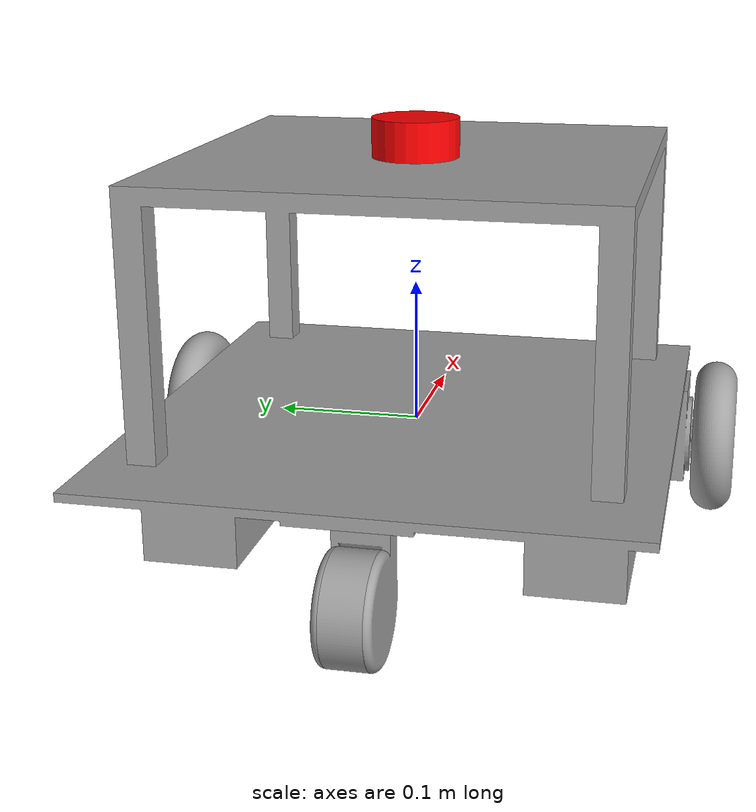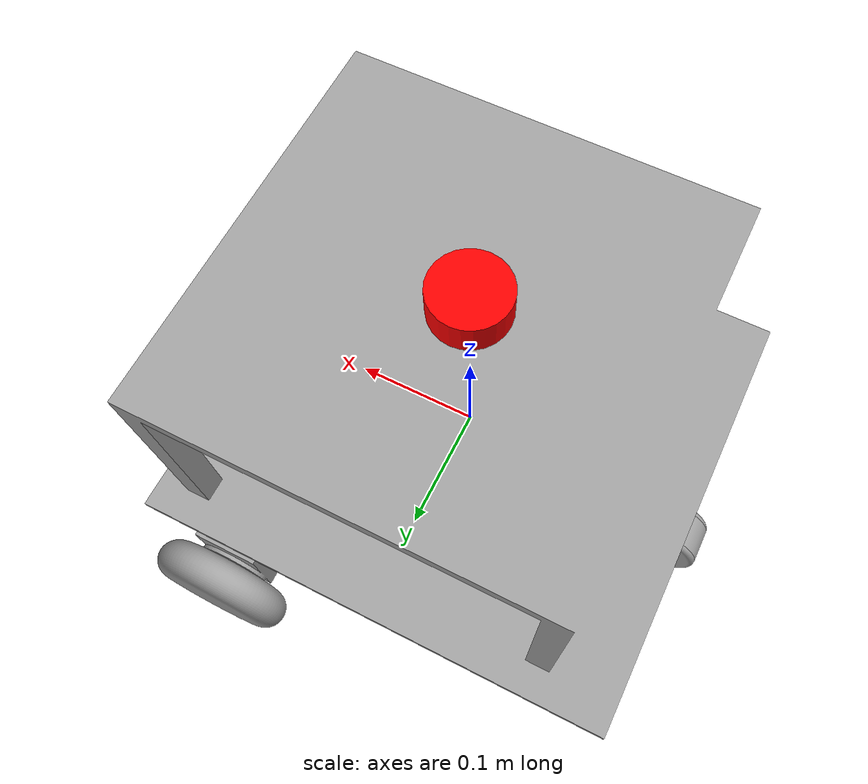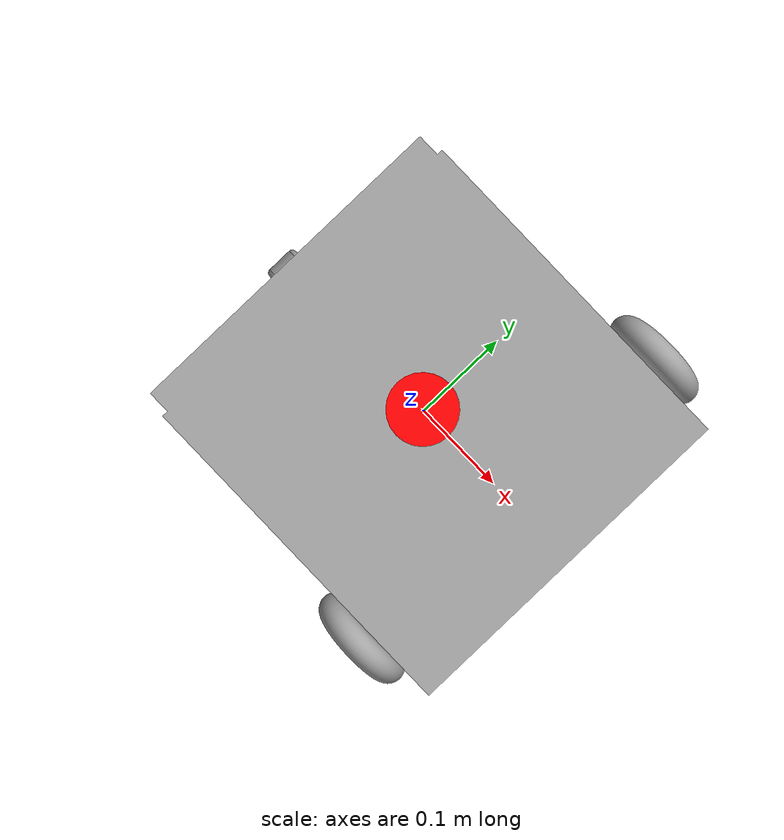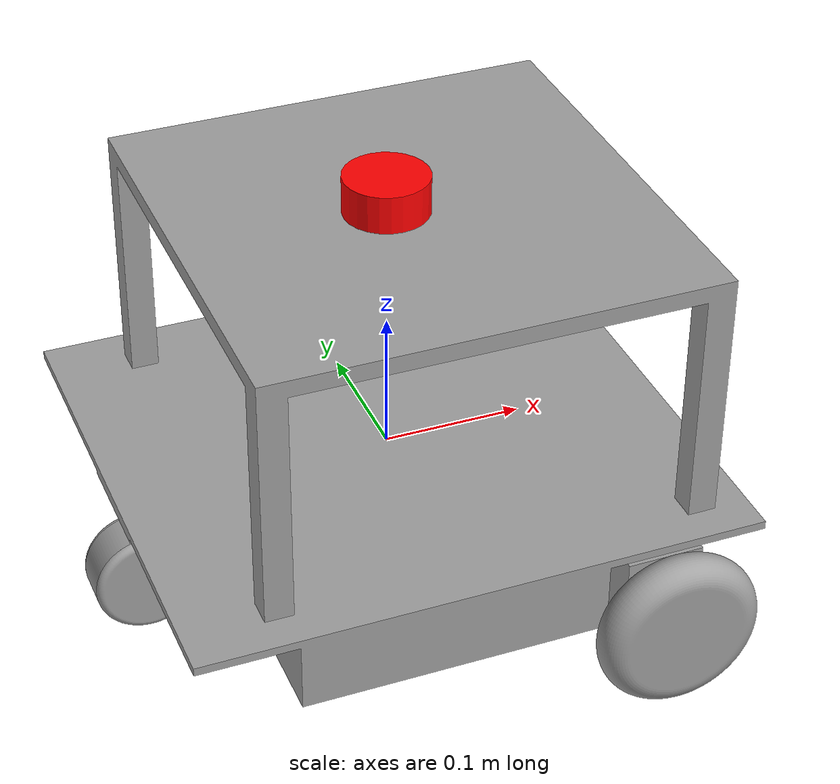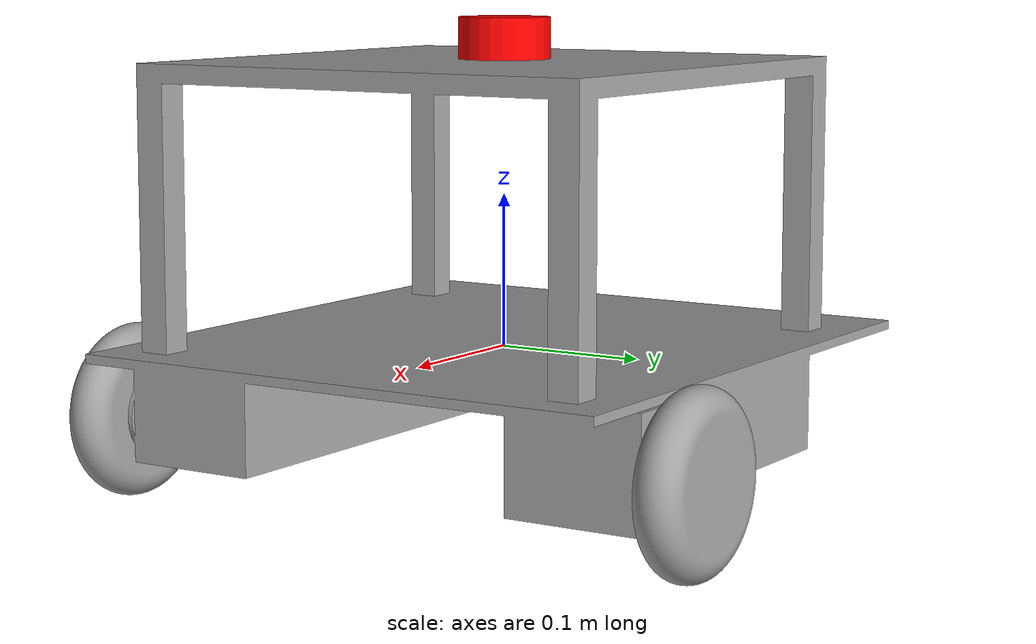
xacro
<?xml version="1.0" ?>
<robot name="untitled" xmlns:xacro="http://www.ros.org/wiki/xacro">

<xacro:include filename="$(find untitled_description)/urdf/materials.xacro" />
<xacro:include filename="$(find untitled_description)/urdf/untitled.trans" />
<xacro:include filename="$(find untitled_description)/urdf/untitled.gazebo" />

    <material name="red">
        <color rgba="1 0 0 1"/>
    </material>

<link name="base_link">
  <inertial>
    <origin xyz="0.016327859494768997 -3.84419265551956e-06 0.028206108168890177" rpy="0 0 0"/>
    <mass value="41.192056226480226"/>
    <inertia ixx="0.964472" iyy="0.728351" izz="0.995113" ixy="-2.8e-05" iyz="-5e-06" ixz="0.008696"/>
  </inertial>
  <visual>
    <origin xyz="0 0 0" rpy="0 0 0"/>
    <geometry>
      <mesh filename="file://$(find untitled_description)/meshes/base_link.stl" scale="0.001 0.001 0.001"/>
    </geometry>
    <material name="Steel-Satin"/>
  </visual>
  <collision>
    <origin xyz="0 0 0" rpy="0 0 0"/>
    <geometry>
      <mesh filename="file://$(find untitled_description)/meshes/base_link.stl" scale="0.001 0.001 0.001"/>
    </geometry>
  </collision>
</link>

<joint name="base_footprint_joint" type="fixed">
  <parent link="base_footprint"/>
  <child link="base_link"/>
  <origin xyz="0 0 0" rpy="0 0 0"/>
</joint>

<link name="base_footprint">
</link>

<link name="Right_Wheel_1">
  <inertial>
    <origin xyz="2.8520354061756237e-07 0.015599999999999975 0.0" rpy="0 0 0"/>
    <mass value="2.2656784023510617"/>
    <inertia ixx="0.001857" iyy="0.003387" izz="0.001857" ixy="-0.0" iyz="-0.0" ixz="0.0"/>
  </inertial>
  <visual>
    <origin xyz="-0.125629 -0.1931 0.0435" rpy="0 0 0"/>
    <geometry>
      <mesh filename="file://$(find untitled_description)/meshes/Right_Wheel_1.stl" scale="0.001 0.001 0.001"/>
    </geometry>
    <material name="Steel-Satin"/>
  </visual>
  <collision>
    <origin xyz="-0.125629 -0.1931 0.0435" rpy="0 0 0"/>
    <geometry>
      <mesh filename="file://$(find untitled_description)/meshes/Right_Wheel_1.stl" scale="0.001 0.001 0.001"/>
    </geometry>
  </collision>
</link>

<link name="Left_Wheel_1">
  <inertial>
    <origin xyz="2.8520354061756237e-07 -0.015599999999999975 0.0" rpy="0 0 0"/>
    <mass value="2.2656784023510617"/>
    <inertia ixx="0.001857" iyy="0.003387" izz="0.001857" ixy="0.0" iyz="0.0" ixz="0.0"/>
  </inertial>
  <visual>
    <origin xyz="-0.125629 0.1931 0.0435" rpy="0 0 0"/>
    <geometry>
      <mesh filename="file://$(find untitled_description)/meshes/Left_Wheel_1.stl" scale="0.001 0.001 0.001"/>
    </geometry>
    <material name="Steel-Satin"/>
  </visual>
  <collision>
    <origin xyz="-0.125629 0.1931 0.0435" rpy="0 0 0"/>
    <geometry>
      <mesh filename="file://$(find untitled_description)/meshes/Left_Wheel_1.stl" scale="0.001 0.001 0.001"/>
    </geometry>
  </collision>
</link>

<link name="Caster_Wheel_1">
  <inertial>
    <origin xyz="-2.7755575615628914e-17 0.014000000000000009 -2.7755575615628914e-17" rpy="0 0 0"/>
    <mass value="0.9710466542705191"/>
    <inertia ixx="0.000405" iyy="0.000683" izz="0.000405" ixy="-0.0" iyz="0.0" ixz="-0.0"/>
  </inertial>
  <visual>
    <origin xyz="0.182364 0.015 0.0625" rpy="0 0 0"/>
    <geometry>
      <mesh filename="file://$(find untitled_description)/meshes/Caster_Wheel_1.stl" scale="0.001 0.001 0.001"/>
    </geometry>
    <material name="Steel-Satin"/>
  </visual>
  <collision>
    <origin xyz="0.182364 0.015 0.0625" rpy="0 0 0"/>
    <geometry>
      <mesh filename="file://$(find untitled_description)/meshes/Caster_Wheel_1.stl" scale="0.001 0.001 0.001"/>
    </geometry>
  </collision>
</link>

<link name="Caster_Wheel_out_1">
  <inertial>
    <origin xyz="-0.015502855015345512 6.562111789501154e-09 -0.0451876324790609" rpy="0 0 0"/>
    <mass value="0.48651791272438033"/>
    <inertia ixx="0.000437" iyy="0.000504" izz="0.000284" ixy="0.0" iyz="0.0" ixz="-0.000111"/>
  </inertial>
  <visual>
    <origin xyz="0.159 0.001 0.003" rpy="0 0 0"/>
    <geometry>
      <mesh filename="file://$(find untitled_description)/meshes/Caster_Wheel_out_1.stl" scale="0.001 0.001 0.001"/>
    </geometry>
    <material name="Steel-Satin"/>
  </visual>
  <collision>
    <origin xyz="0.159 0.001 0.003" rpy="0 0 0"/>
    <geometry>
      <mesh filename="file://$(find untitled_description)/meshes/Caster_Wheel_out_1.stl" scale="0.001 0.001 0.001"/>
    </geometry>
  </collision>
</link>

<joint name="Revolute 3" type="continuous">
  <origin xyz="0.125629 0.1931 -0.0435" rpy="0 0 0"/>
  <parent link="base_link"/>
  <child link="Right_Wheel_1"/>
  <axis xyz="0.0 1.0 0.0"/>
</joint>

<joint name="Revolute 4" type="continuous">
  <origin xyz="0.125629 -0.1931 -0.0435" rpy="0 0 0"/>
  <parent link="base_link"/>
  <child link="Left_Wheel_1"/>
  <axis xyz="0.0 1.0 0.0"/>
</joint>

<joint name="Revolute 5" type="continuous">
  <origin xyz="-0.023364 -0.014 -0.0595" rpy="0 0 0"/>
  <parent link="Caster_Wheel_out_1"/>
  <child link="Caster_Wheel_1"/>
  <axis xyz="0.0 1.0 0.0"/>
</joint>

<joint name="Revolute 6" type="continuous">
  <origin xyz="-0.159 -0.001 -0.003" rpy="0 0 0"/>
  <parent link="base_link"/>
  <child link="Caster_Wheel_out_1"/>
  <axis xyz="0.0 0.0 -1.0"/>
</joint>

    <!-- LiDAR -->
    <joint name="laser_joint" type="fixed">
        <parent link="base_link"/>
        <child link="laser_frame"/>
        <origin xyz="0 0 0.2" rpy="0 0 0"/>
    </joint>

    <link name="laser_frame">
        <visual>
            <geometry>
                <cylinder radius="0.03" length="0.03"/>
            </geometry>
            <material name="red"/>
        </visual>
        <collision>
            <geometry>
                <cylinder radius="0.03" length="0.03"/>
            </geometry>
        </collision>
    </link>
 <!-- YDLidar 장치 정보 -->
    <xacro:property name="lidar_serial_port" value="/dev/ttyUSB0"/>
    <xacro:property name="lidar_frame_id" value="laser_frame"/>
</robot>

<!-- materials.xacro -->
<robot name="untitled" xmlns:xacro="http://www.ros.org/wiki/xacro" >

  <material name="Steel-Satin">
    <color rgba="0.627 0.627 0.627 1.0"/>
  </material>

</robot>

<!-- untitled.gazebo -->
<robot name="untitled" xmlns:xacro="http://www.ros.org/wiki/xacro" >

<xacro:property name="body_color" value="Gazebo/Silver" />

<gazebo>
  <plugin name="control" filename="libgazebo_ros_control.so"/>
</gazebo>
<gazebo reference="base_link">
  <material>${body_color}</material>
  <mu1>0.2</mu1>
  <mu2>0.2</mu2>
  <self_collide>true</self_collide>
  <gravity>true</gravity>
</gazebo>

<gazebo reference="Right_Wheel_1">
  <material>${body_color}</material>
  <mu1>0.2</mu1>
  <mu2>0.2</mu2>
  <self_collide>true</self_collide>
</gazebo>

<gazebo reference="Left_Wheel_1">
  <material>${body_color}</material>
  <mu1>0.2</mu1>
  <mu2>0.2</mu2>
  <self_collide>true</self_collide>
</gazebo>

<gazebo reference="Caster_Wheel_1">
  <material>${body_color}</material>
  <mu1>0.2</mu1>
  <mu2>0.2</mu2>
  <self_collide>true</self_collide>
</gazebo>

<gazebo reference="Caster_Wheel_out_1">
  <material>${body_color}</material>
  <mu1>0.2</mu1>
  <mu2>0.2</mu2>
  <self_collide>true</self_collide>
</gazebo>

</robot>
